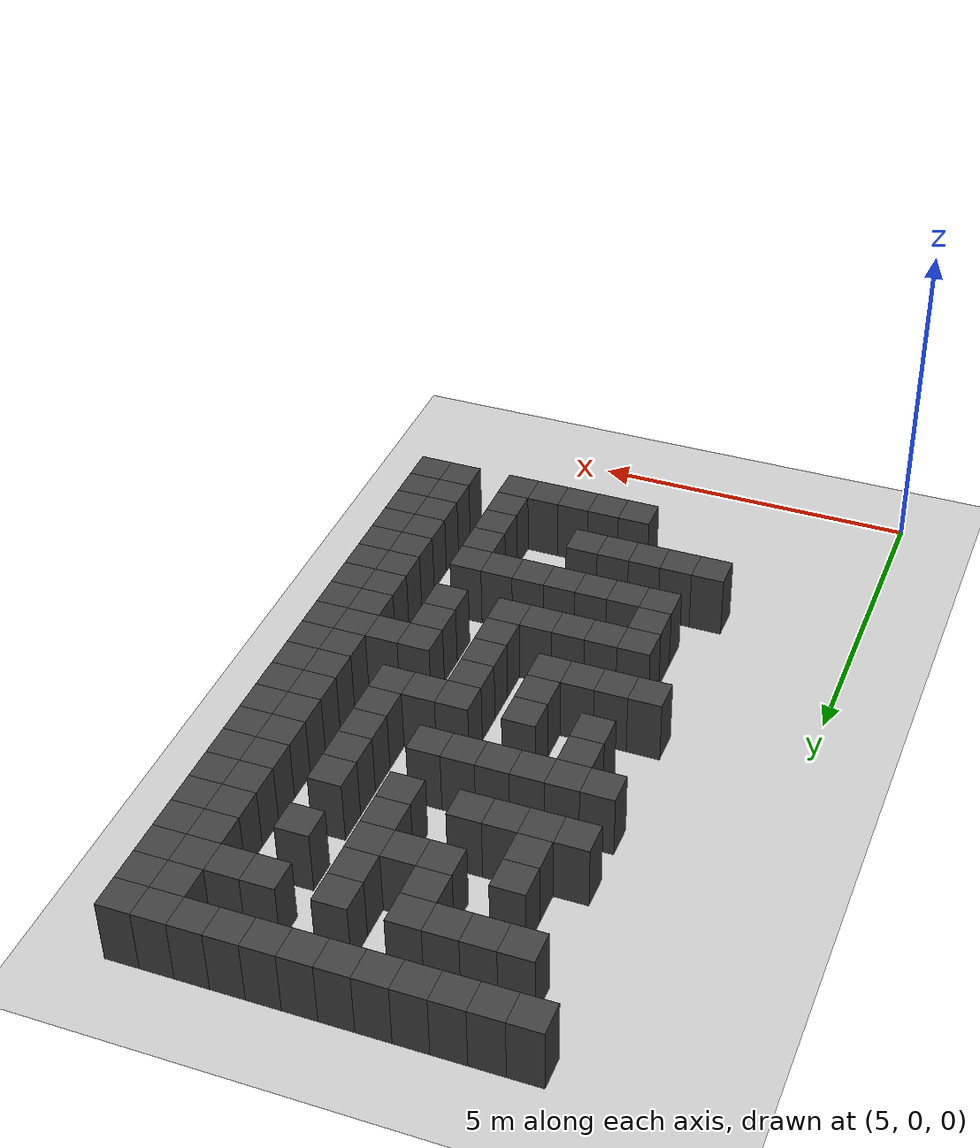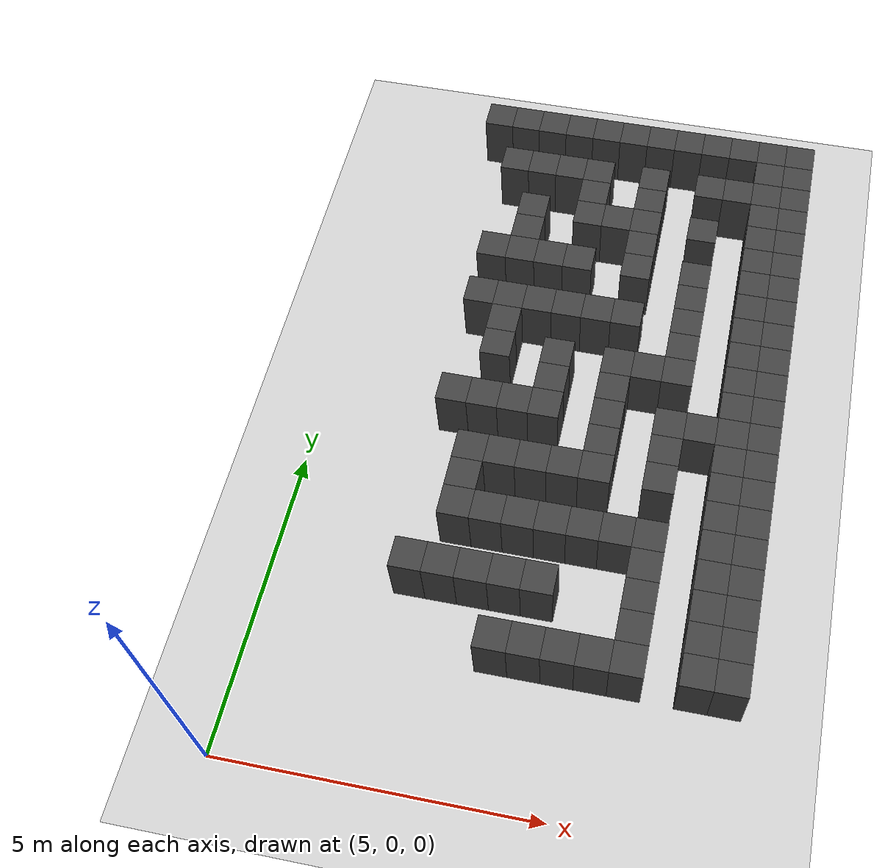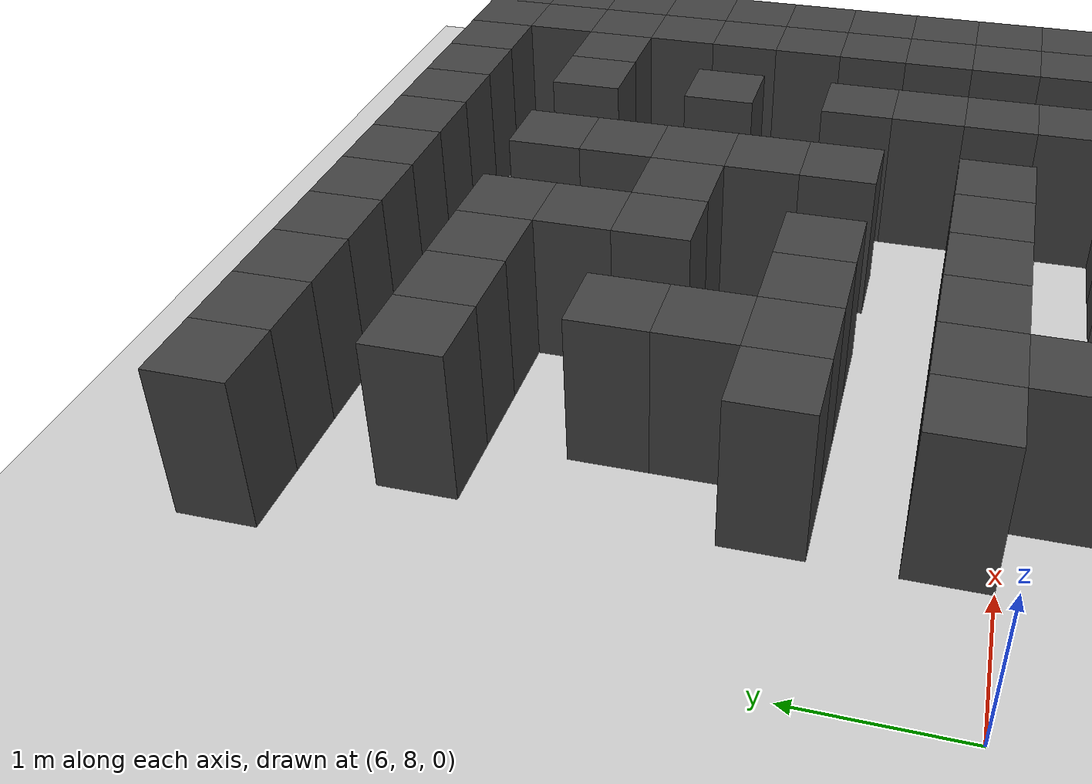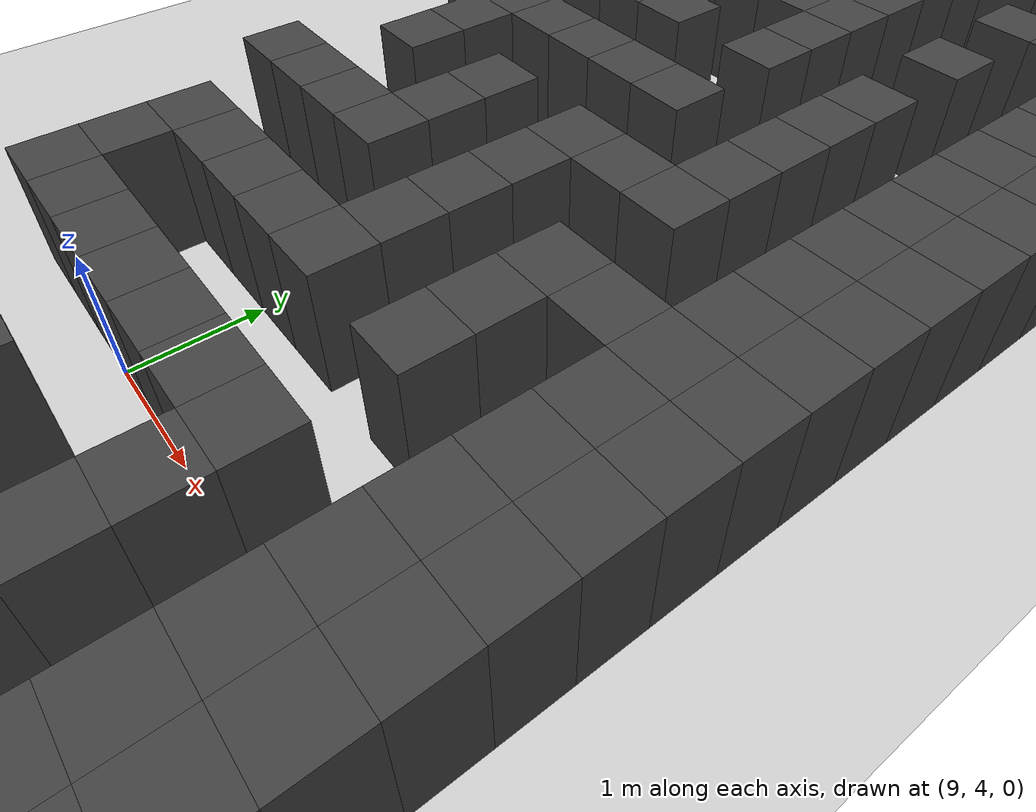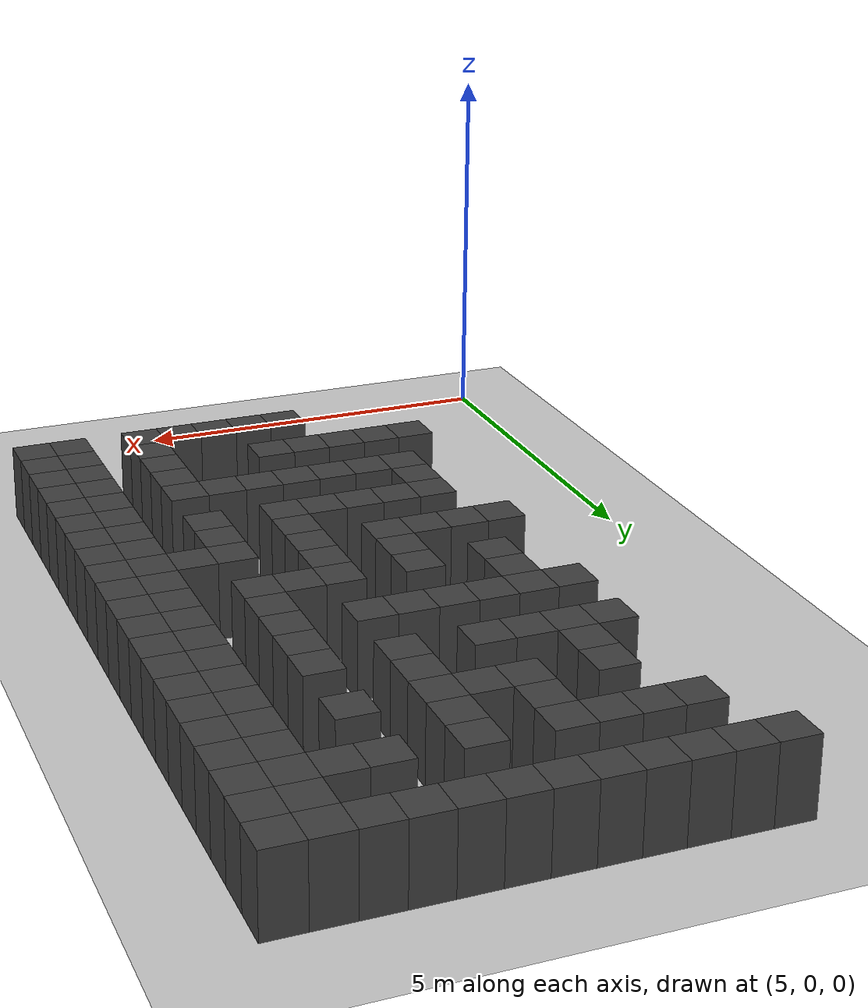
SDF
<sdf version="1.7">
 <world name="map_17503">
  <model name="ground_plane">
   <static>true</static>
   <link name="link">
    <collision name="collision">
     <geometry><plane><normal>0 0 1</normal><size>200 200</size></plane></geometry>
    </collision>
    <visual name="visual">
     <geometry><plane><normal>0 0 1</normal><size>200 200</size></plane></geometry>
     <material><ambient>0.8 0.8 0.8 1</ambient><diffuse>0.8 0.8 0.8 1</diffuse></material>
    </visual>
   </link>
  </model>
  <model name="maze_environment">
   <static>true</static>
   <link name="wall_38">
    <pose>6.750 12.250 0.500 0 0 0</pose>
    <collision name="col"><geometry><box><size>0.5 0.5 1.0</size></box></geometry></collision>
    <visual name="vis">
     <geometry><box><size>0.5 0.5 1.0</size></box></geometry>
     <material><ambient>0.15 0.15 0.15 1</ambient><diffuse>0.25 0.25 0.25 1</diffuse></material>
    </visual>
   </link>
   <link name="wall_39">
    <pose>7.250 12.250 0.500 0 0 0</pose>
    <collision name="col"><geometry><box><size>0.5 0.5 1.0</size></box></geometry></collision>
    <visual name="vis">
     <geometry><box><size>0.5 0.5 1.0</size></box></geometry>
     <material><ambient>0.15 0.15 0.15 1</ambient><diffuse>0.25 0.25 0.25 1</diffuse></material>
    </visual>
   </link>
   <link name="wall_40">
    <pose>7.750 12.250 0.500 0 0 0</pose>
    <collision name="col"><geometry><box><size>0.5 0.5 1.0</size></box></geometry></collision>
    <visual name="vis">
     <geometry><box><size>0.5 0.5 1.0</size></box></geometry>
     <material><ambient>0.15 0.15 0.15 1</ambient><diffuse>0.25 0.25 0.25 1</diffuse></material>
    </visual>
   </link>
   <link name="wall_41">
    <pose>8.250 12.250 0.500 0 0 0</pose>
    <collision name="col"><geometry><box><size>0.5 0.5 1.0</size></box></geometry></collision>
    <visual name="vis">
     <geometry><box><size>0.5 0.5 1.0</size></box></geometry>
     <material><ambient>0.15 0.15 0.15 1</ambient><diffuse>0.25 0.25 0.25 1</diffuse></material>
    </visual>
   </link>
   <link name="wall_42">
    <pose>8.750 12.250 0.500 0 0 0</pose>
    <collision name="col"><geometry><box><size>0.5 0.5 1.0</size></box></geometry></collision>
    <visual name="vis">
     <geometry><box><size>0.5 0.5 1.0</size></box></geometry>
     <material><ambient>0.15 0.15 0.15 1</ambient><diffuse>0.25 0.25 0.25 1</diffuse></material>
    </visual>
   </link>
   <link name="wall_43">
    <pose>9.250 12.250 0.500 0 0 0</pose>
    <collision name="col"><geometry><box><size>0.5 0.5 1.0</size></box></geometry></collision>
    <visual name="vis">
     <geometry><box><size>0.5 0.5 1.0</size></box></geometry>
     <material><ambient>0.15 0.15 0.15 1</ambient><diffuse>0.25 0.25 0.25 1</diffuse></material>
    </visual>
   </link>
   <link name="wall_44">
    <pose>9.750 12.250 0.500 0 0 0</pose>
    <collision name="col"><geometry><box><size>0.5 0.5 1.0</size></box></geometry></collision>
    <visual name="vis">
     <geometry><box><size>0.5 0.5 1.0</size></box></geometry>
     <material><ambient>0.15 0.15 0.15 1</ambient><diffuse>0.25 0.25 0.25 1</diffuse></material>
    </visual>
   </link>
   <link name="wall_45">
    <pose>10.250 12.250 0.500 0 0 0</pose>
    <collision name="col"><geometry><box><size>0.5 0.5 1.0</size></box></geometry></collision>
    <visual name="vis">
     <geometry><box><size>0.5 0.5 1.0</size></box></geometry>
     <material><ambient>0.15 0.15 0.15 1</ambient><diffuse>0.25 0.25 0.25 1</diffuse></material>
    </visual>
   </link>
   <link name="wall_46">
    <pose>10.750 12.250 0.500 0 0 0</pose>
    <collision name="col"><geometry><box><size>0.5 0.5 1.0</size></box></geometry></collision>
    <visual name="vis">
     <geometry><box><size>0.5 0.5 1.0</size></box></geometry>
     <material><ambient>0.15 0.15 0.15 1</ambient><diffuse>0.25 0.25 0.25 1</diffuse></material>
    </visual>
   </link>
   <link name="wall_47">
    <pose>11.250 12.250 0.500 0 0 0</pose>
    <collision name="col"><geometry><box><size>0.5 0.5 1.0</size></box></geometry></collision>
    <visual name="vis">
     <geometry><box><size>0.5 0.5 1.0</size></box></geometry>
     <material><ambient>0.15 0.15 0.15 1</ambient><diffuse>0.25 0.25 0.25 1</diffuse></material>
    </visual>
   </link>
   <link name="wall_48">
    <pose>11.750 12.250 0.500 0 0 0</pose>
    <collision name="col"><geometry><box><size>0.5 0.5 1.0</size></box></geometry></collision>
    <visual name="vis">
     <geometry><box><size>0.5 0.5 1.0</size></box></geometry>
     <material><ambient>0.15 0.15 0.15 1</ambient><diffuse>0.25 0.25 0.25 1</diffuse></material>
    </visual>
   </link>
   <link name="wall_49">
    <pose>12.250 12.250 0.500 0 0 0</pose>
    <collision name="col"><geometry><box><size>0.5 0.5 1.0</size></box></geometry></collision>
    <visual name="vis">
     <geometry><box><size>0.5 0.5 1.0</size></box></geometry>
     <material><ambient>0.15 0.15 0.15 1</ambient><diffuse>0.25 0.25 0.25 1</diffuse></material>
    </visual>
   </link>
   <link name="wall_56">
    <pose>11.750 11.750 0.500 0 0 0</pose>
    <collision name="col"><geometry><box><size>0.5 0.5 1.0</size></box></geometry></collision>
    <visual name="vis">
     <geometry><box><size>0.5 0.5 1.0</size></box></geometry>
     <material><ambient>0.15 0.15 0.15 1</ambient><diffuse>0.25 0.25 0.25 1</diffuse></material>
    </visual>
   </link>
   <link name="wall_57">
    <pose>12.250 11.750 0.500 0 0 0</pose>
    <collision name="col"><geometry><box><size>0.5 0.5 1.0</size></box></geometry></collision>
    <visual name="vis">
     <geometry><box><size>0.5 0.5 1.0</size></box></geometry>
     <material><ambient>0.15 0.15 0.15 1</ambient><diffuse>0.25 0.25 0.25 1</diffuse></material>
    </visual>
   </link>
   <link name="wall_85">
    <pose>7.250 11.250 0.500 0 0 0</pose>
    <collision name="col"><geometry><box><size>0.5 0.5 1.0</size></box></geometry></collision>
    <visual name="vis">
     <geometry><box><size>0.5 0.5 1.0</size></box></geometry>
     <material><ambient>0.15 0.15 0.15 1</ambient><diffuse>0.25 0.25 0.25 1</diffuse></material>
    </visual>
   </link>
   <link name="wall_86">
    <pose>7.750 11.250 0.500 0 0 0</pose>
    <collision name="col"><geometry><box><size>0.5 0.5 1.0</size></box></geometry></collision>
    <visual name="vis">
     <geometry><box><size>0.5 0.5 1.0</size></box></geometry>
     <material><ambient>0.15 0.15 0.15 1</ambient><diffuse>0.25 0.25 0.25 1</diffuse></material>
    </visual>
   </link>
   <link name="wall_87">
    <pose>8.250 11.250 0.500 0 0 0</pose>
    <collision name="col"><geometry><box><size>0.5 0.5 1.0</size></box></geometry></collision>
    <visual name="vis">
     <geometry><box><size>0.5 0.5 1.0</size></box></geometry>
     <material><ambient>0.15 0.15 0.15 1</ambient><diffuse>0.25 0.25 0.25 1</diffuse></material>
    </visual>
   </link>
   <link name="wall_88">
    <pose>8.750 11.250 0.500 0 0 0</pose>
    <collision name="col"><geometry><box><size>0.5 0.5 1.0</size></box></geometry></collision>
    <visual name="vis">
     <geometry><box><size>0.5 0.5 1.0</size></box></geometry>
     <material><ambient>0.15 0.15 0.15 1</ambient><diffuse>0.25 0.25 0.25 1</diffuse></material>
    </visual>
   </link>
   <link name="wall_89">
    <pose>9.750 11.250 0.500 0 0 0</pose>
    <collision name="col"><geometry><box><size>0.5 0.5 1.0</size></box></geometry></collision>
    <visual name="vis">
     <geometry><box><size>0.5 0.5 1.0</size></box></geometry>
     <material><ambient>0.15 0.15 0.15 1</ambient><diffuse>0.25 0.25 0.25 1</diffuse></material>
    </visual>
   </link>
   <link name="wall_90">
    <pose>10.750 11.250 0.500 0 0 0</pose>
    <collision name="col"><geometry><box><size>0.5 0.5 1.0</size></box></geometry></collision>
    <visual name="vis">
     <geometry><box><size>0.5 0.5 1.0</size></box></geometry>
     <material><ambient>0.15 0.15 0.15 1</ambient><diffuse>0.25 0.25 0.25 1</diffuse></material>
    </visual>
   </link>
   <link name="wall_91">
    <pose>11.250 11.250 0.500 0 0 0</pose>
    <collision name="col"><geometry><box><size>0.5 0.5 1.0</size></box></geometry></collision>
    <visual name="vis">
     <geometry><box><size>0.5 0.5 1.0</size></box></geometry>
     <material><ambient>0.15 0.15 0.15 1</ambient><diffuse>0.25 0.25 0.25 1</diffuse></material>
    </visual>
   </link>
   <link name="wall_92">
    <pose>11.750 11.250 0.500 0 0 0</pose>
    <collision name="col"><geometry><box><size>0.5 0.5 1.0</size></box></geometry></collision>
    <visual name="vis">
     <geometry><box><size>0.5 0.5 1.0</size></box></geometry>
     <material><ambient>0.15 0.15 0.15 1</ambient><diffuse>0.25 0.25 0.25 1</diffuse></material>
    </visual>
   </link>
   <link name="wall_93">
    <pose>12.250 11.250 0.500 0 0 0</pose>
    <collision name="col"><geometry><box><size>0.5 0.5 1.0</size></box></geometry></collision>
    <visual name="vis">
     <geometry><box><size>0.5 0.5 1.0</size></box></geometry>
     <material><ambient>0.15 0.15 0.15 1</ambient><diffuse>0.25 0.25 0.25 1</diffuse></material>
    </visual>
   </link>
   <link name="wall_102">
    <pose>8.750 10.750 0.500 0 0 0</pose>
    <collision name="col"><geometry><box><size>0.5 0.5 1.0</size></box></geometry></collision>
    <visual name="vis">
     <geometry><box><size>0.5 0.5 1.0</size></box></geometry>
     <material><ambient>0.15 0.15 0.15 1</ambient><diffuse>0.25 0.25 0.25 1</diffuse></material>
    </visual>
   </link>
   <link name="wall_103">
    <pose>9.750 10.750 0.500 0 0 0</pose>
    <collision name="col"><geometry><box><size>0.5 0.5 1.0</size></box></geometry></collision>
    <visual name="vis">
     <geometry><box><size>0.5 0.5 1.0</size></box></geometry>
     <material><ambient>0.15 0.15 0.15 1</ambient><diffuse>0.25 0.25 0.25 1</diffuse></material>
    </visual>
   </link>
   <link name="wall_104">
    <pose>11.750 10.750 0.500 0 0 0</pose>
    <collision name="col"><geometry><box><size>0.5 0.5 1.0</size></box></geometry></collision>
    <visual name="vis">
     <geometry><box><size>0.5 0.5 1.0</size></box></geometry>
     <material><ambient>0.15 0.15 0.15 1</ambient><diffuse>0.25 0.25 0.25 1</diffuse></material>
    </visual>
   </link>
   <link name="wall_105">
    <pose>12.250 10.750 0.500 0 0 0</pose>
    <collision name="col"><geometry><box><size>0.5 0.5 1.0</size></box></geometry></collision>
    <visual name="vis">
     <geometry><box><size>0.5 0.5 1.0</size></box></geometry>
     <material><ambient>0.15 0.15 0.15 1</ambient><diffuse>0.25 0.25 0.25 1</diffuse></material>
    </visual>
   </link>
   <link name="wall_136">
    <pose>7.750 10.250 0.500 0 0 0</pose>
    <collision name="col"><geometry><box><size>0.5 0.5 1.0</size></box></geometry></collision>
    <visual name="vis">
     <geometry><box><size>0.5 0.5 1.0</size></box></geometry>
     <material><ambient>0.15 0.15 0.15 1</ambient><diffuse>0.25 0.25 0.25 1</diffuse></material>
    </visual>
   </link>
   <link name="wall_137">
    <pose>8.750 10.250 0.500 0 0 0</pose>
    <collision name="col"><geometry><box><size>0.5 0.5 1.0</size></box></geometry></collision>
    <visual name="vis">
     <geometry><box><size>0.5 0.5 1.0</size></box></geometry>
     <material><ambient>0.15 0.15 0.15 1</ambient><diffuse>0.25 0.25 0.25 1</diffuse></material>
    </visual>
   </link>
   <link name="wall_138">
    <pose>9.250 10.250 0.500 0 0 0</pose>
    <collision name="col"><geometry><box><size>0.5 0.5 1.0</size></box></geometry></collision>
    <visual name="vis">
     <geometry><box><size>0.5 0.5 1.0</size></box></geometry>
     <material><ambient>0.15 0.15 0.15 1</ambient><diffuse>0.25 0.25 0.25 1</diffuse></material>
    </visual>
   </link>
   <link name="wall_139">
    <pose>9.750 10.250 0.500 0 0 0</pose>
    <collision name="col"><geometry><box><size>0.5 0.5 1.0</size></box></geometry></collision>
    <visual name="vis">
     <geometry><box><size>0.5 0.5 1.0</size></box></geometry>
     <material><ambient>0.15 0.15 0.15 1</ambient><diffuse>0.25 0.25 0.25 1</diffuse></material>
    </visual>
   </link>
   <link name="wall_140">
    <pose>10.750 10.250 0.500 0 0 0</pose>
    <collision name="col"><geometry><box><size>0.5 0.5 1.0</size></box></geometry></collision>
    <visual name="vis">
     <geometry><box><size>0.5 0.5 1.0</size></box></geometry>
     <material><ambient>0.15 0.15 0.15 1</ambient><diffuse>0.25 0.25 0.25 1</diffuse></material>
    </visual>
   </link>
   <link name="wall_141">
    <pose>11.750 10.250 0.500 0 0 0</pose>
    <collision name="col"><geometry><box><size>0.5 0.5 1.0</size></box></geometry></collision>
    <visual name="vis">
     <geometry><box><size>0.5 0.5 1.0</size></box></geometry>
     <material><ambient>0.15 0.15 0.15 1</ambient><diffuse>0.25 0.25 0.25 1</diffuse></material>
    </visual>
   </link>
   <link name="wall_142">
    <pose>12.250 10.250 0.500 0 0 0</pose>
    <collision name="col"><geometry><box><size>0.5 0.5 1.0</size></box></geometry></collision>
    <visual name="vis">
     <geometry><box><size>0.5 0.5 1.0</size></box></geometry>
     <material><ambient>0.15 0.15 0.15 1</ambient><diffuse>0.25 0.25 0.25 1</diffuse></material>
    </visual>
   </link>
   <link name="wall_150">
    <pose>7.750 9.750 0.500 0 0 0</pose>
    <collision name="col"><geometry><box><size>0.5 0.5 1.0</size></box></geometry></collision>
    <visual name="vis">
     <geometry><box><size>0.5 0.5 1.0</size></box></geometry>
     <material><ambient>0.15 0.15 0.15 1</ambient><diffuse>0.25 0.25 0.25 1</diffuse></material>
    </visual>
   </link>
   <link name="wall_151">
    <pose>9.750 9.750 0.500 0 0 0</pose>
    <collision name="col"><geometry><box><size>0.5 0.5 1.0</size></box></geometry></collision>
    <visual name="vis">
     <geometry><box><size>0.5 0.5 1.0</size></box></geometry>
     <material><ambient>0.15 0.15 0.15 1</ambient><diffuse>0.25 0.25 0.25 1</diffuse></material>
    </visual>
   </link>
   <link name="wall_152">
    <pose>11.750 9.750 0.500 0 0 0</pose>
    <collision name="col"><geometry><box><size>0.5 0.5 1.0</size></box></geometry></collision>
    <visual name="vis">
     <geometry><box><size>0.5 0.5 1.0</size></box></geometry>
     <material><ambient>0.15 0.15 0.15 1</ambient><diffuse>0.25 0.25 0.25 1</diffuse></material>
    </visual>
   </link>
   <link name="wall_153">
    <pose>12.250 9.750 0.500 0 0 0</pose>
    <collision name="col"><geometry><box><size>0.5 0.5 1.0</size></box></geometry></collision>
    <visual name="vis">
     <geometry><box><size>0.5 0.5 1.0</size></box></geometry>
     <material><ambient>0.15 0.15 0.15 1</ambient><diffuse>0.25 0.25 0.25 1</diffuse></material>
    </visual>
   </link>
   <link name="wall_181">
    <pose>7.250 9.250 0.500 0 0 0</pose>
    <collision name="col"><geometry><box><size>0.5 0.5 1.0</size></box></geometry></collision>
    <visual name="vis">
     <geometry><box><size>0.5 0.5 1.0</size></box></geometry>
     <material><ambient>0.15 0.15 0.15 1</ambient><diffuse>0.25 0.25 0.25 1</diffuse></material>
    </visual>
   </link>
   <link name="wall_182">
    <pose>7.750 9.250 0.500 0 0 0</pose>
    <collision name="col"><geometry><box><size>0.5 0.5 1.0</size></box></geometry></collision>
    <visual name="vis">
     <geometry><box><size>0.5 0.5 1.0</size></box></geometry>
     <material><ambient>0.15 0.15 0.15 1</ambient><diffuse>0.25 0.25 0.25 1</diffuse></material>
    </visual>
   </link>
   <link name="wall_183">
    <pose>8.250 9.250 0.500 0 0 0</pose>
    <collision name="col"><geometry><box><size>0.5 0.5 1.0</size></box></geometry></collision>
    <visual name="vis">
     <geometry><box><size>0.5 0.5 1.0</size></box></geometry>
     <material><ambient>0.15 0.15 0.15 1</ambient><diffuse>0.25 0.25 0.25 1</diffuse></material>
    </visual>
   </link>
   <link name="wall_184">
    <pose>8.750 9.250 0.500 0 0 0</pose>
    <collision name="col"><geometry><box><size>0.5 0.5 1.0</size></box></geometry></collision>
    <visual name="vis">
     <geometry><box><size>0.5 0.5 1.0</size></box></geometry>
     <material><ambient>0.15 0.15 0.15 1</ambient><diffuse>0.25 0.25 0.25 1</diffuse></material>
    </visual>
   </link>
   <link name="wall_185">
    <pose>9.750 9.250 0.500 0 0 0</pose>
    <collision name="col"><geometry><box><size>0.5 0.5 1.0</size></box></geometry></collision>
    <visual name="vis">
     <geometry><box><size>0.5 0.5 1.0</size></box></geometry>
     <material><ambient>0.15 0.15 0.15 1</ambient><diffuse>0.25 0.25 0.25 1</diffuse></material>
    </visual>
   </link>
   <link name="wall_186">
    <pose>10.750 9.250 0.500 0 0 0</pose>
    <collision name="col"><geometry><box><size>0.5 0.5 1.0</size></box></geometry></collision>
    <visual name="vis">
     <geometry><box><size>0.5 0.5 1.0</size></box></geometry>
     <material><ambient>0.15 0.15 0.15 1</ambient><diffuse>0.25 0.25 0.25 1</diffuse></material>
    </visual>
   </link>
   <link name="wall_187">
    <pose>11.750 9.250 0.500 0 0 0</pose>
    <collision name="col"><geometry><box><size>0.5 0.5 1.0</size></box></geometry></collision>
    <visual name="vis">
     <geometry><box><size>0.5 0.5 1.0</size></box></geometry>
     <material><ambient>0.15 0.15 0.15 1</ambient><diffuse>0.25 0.25 0.25 1</diffuse></material>
    </visual>
   </link>
   <link name="wall_188">
    <pose>12.250 9.250 0.500 0 0 0</pose>
    <collision name="col"><geometry><box><size>0.5 0.5 1.0</size></box></geometry></collision>
    <visual name="vis">
     <geometry><box><size>0.5 0.5 1.0</size></box></geometry>
     <material><ambient>0.15 0.15 0.15 1</ambient><diffuse>0.25 0.25 0.25 1</diffuse></material>
    </visual>
   </link>
   <link name="wall_198">
    <pose>10.750 8.750 0.500 0 0 0</pose>
    <collision name="col"><geometry><box><size>0.5 0.5 1.0</size></box></geometry></collision>
    <visual name="vis">
     <geometry><box><size>0.5 0.5 1.0</size></box></geometry>
     <material><ambient>0.15 0.15 0.15 1</ambient><diffuse>0.25 0.25 0.25 1</diffuse></material>
    </visual>
   </link>
   <link name="wall_199">
    <pose>11.750 8.750 0.500 0 0 0</pose>
    <collision name="col"><geometry><box><size>0.5 0.5 1.0</size></box></geometry></collision>
    <visual name="vis">
     <geometry><box><size>0.5 0.5 1.0</size></box></geometry>
     <material><ambient>0.15 0.15 0.15 1</ambient><diffuse>0.25 0.25 0.25 1</diffuse></material>
    </visual>
   </link>
   <link name="wall_200">
    <pose>12.250 8.750 0.500 0 0 0</pose>
    <collision name="col"><geometry><box><size>0.5 0.5 1.0</size></box></geometry></collision>
    <visual name="vis">
     <geometry><box><size>0.5 0.5 1.0</size></box></geometry>
     <material><ambient>0.15 0.15 0.15 1</ambient><diffuse>0.25 0.25 0.25 1</diffuse></material>
    </visual>
   </link>
   <link name="wall_229">
    <pose>7.250 8.250 0.500 0 0 0</pose>
    <collision name="col"><geometry><box><size>0.5 0.5 1.0</size></box></geometry></collision>
    <visual name="vis">
     <geometry><box><size>0.5 0.5 1.0</size></box></geometry>
     <material><ambient>0.15 0.15 0.15 1</ambient><diffuse>0.25 0.25 0.25 1</diffuse></material>
    </visual>
   </link>
   <link name="wall_230">
    <pose>7.750 8.250 0.500 0 0 0</pose>
    <collision name="col"><geometry><box><size>0.5 0.5 1.0</size></box></geometry></collision>
    <visual name="vis">
     <geometry><box><size>0.5 0.5 1.0</size></box></geometry>
     <material><ambient>0.15 0.15 0.15 1</ambient><diffuse>0.25 0.25 0.25 1</diffuse></material>
    </visual>
   </link>
   <link name="wall_231">
    <pose>8.250 8.250 0.500 0 0 0</pose>
    <collision name="col"><geometry><box><size>0.5 0.5 1.0</size></box></geometry></collision>
    <visual name="vis">
     <geometry><box><size>0.5 0.5 1.0</size></box></geometry>
     <material><ambient>0.15 0.15 0.15 1</ambient><diffuse>0.25 0.25 0.25 1</diffuse></material>
    </visual>
   </link>
   <link name="wall_232">
    <pose>8.750 8.250 0.500 0 0 0</pose>
    <collision name="col"><geometry><box><size>0.5 0.5 1.0</size></box></geometry></collision>
    <visual name="vis">
     <geometry><box><size>0.5 0.5 1.0</size></box></geometry>
     <material><ambient>0.15 0.15 0.15 1</ambient><diffuse>0.25 0.25 0.25 1</diffuse></material>
    </visual>
   </link>
   <link name="wall_233">
    <pose>9.250 8.250 0.500 0 0 0</pose>
    <collision name="col"><geometry><box><size>0.5 0.5 1.0</size></box></geometry></collision>
    <visual name="vis">
     <geometry><box><size>0.5 0.5 1.0</size></box></geometry>
     <material><ambient>0.15 0.15 0.15 1</ambient><diffuse>0.25 0.25 0.25 1</diffuse></material>
    </visual>
   </link>
   <link name="wall_234">
    <pose>9.750 8.250 0.500 0 0 0</pose>
    <collision name="col"><geometry><box><size>0.5 0.5 1.0</size></box></geometry></collision>
    <visual name="vis">
     <geometry><box><size>0.5 0.5 1.0</size></box></geometry>
     <material><ambient>0.15 0.15 0.15 1</ambient><diffuse>0.25 0.25 0.25 1</diffuse></material>
    </visual>
   </link>
   <link name="wall_235">
    <pose>10.750 8.250 0.500 0 0 0</pose>
    <collision name="col"><geometry><box><size>0.5 0.5 1.0</size></box></geometry></collision>
    <visual name="vis">
     <geometry><box><size>0.5 0.5 1.0</size></box></geometry>
     <material><ambient>0.15 0.15 0.15 1</ambient><diffuse>0.25 0.25 0.25 1</diffuse></material>
    </visual>
   </link>
   <link name="wall_236">
    <pose>11.750 8.250 0.500 0 0 0</pose>
    <collision name="col"><geometry><box><size>0.5 0.5 1.0</size></box></geometry></collision>
    <visual name="vis">
     <geometry><box><size>0.5 0.5 1.0</size></box></geometry>
     <material><ambient>0.15 0.15 0.15 1</ambient><diffuse>0.25 0.25 0.25 1</diffuse></material>
    </visual>
   </link>
   <link name="wall_237">
    <pose>12.250 8.250 0.500 0 0 0</pose>
    <collision name="col"><geometry><box><size>0.5 0.5 1.0</size></box></geometry></collision>
    <visual name="vis">
     <geometry><box><size>0.5 0.5 1.0</size></box></geometry>
     <material><ambient>0.15 0.15 0.15 1</ambient><diffuse>0.25 0.25 0.25 1</diffuse></material>
    </visual>
   </link>
   <link name="wall_247">
    <pose>7.750 7.750 0.500 0 0 0</pose>
    <collision name="col"><geometry><box><size>0.5 0.5 1.0</size></box></geometry></collision>
    <visual name="vis">
     <geometry><box><size>0.5 0.5 1.0</size></box></geometry>
     <material><ambient>0.15 0.15 0.15 1</ambient><diffuse>0.25 0.25 0.25 1</diffuse></material>
    </visual>
   </link>
   <link name="wall_248">
    <pose>10.750 7.750 0.500 0 0 0</pose>
    <collision name="col"><geometry><box><size>0.5 0.5 1.0</size></box></geometry></collision>
    <visual name="vis">
     <geometry><box><size>0.5 0.5 1.0</size></box></geometry>
     <material><ambient>0.15 0.15 0.15 1</ambient><diffuse>0.25 0.25 0.25 1</diffuse></material>
    </visual>
   </link>
   <link name="wall_249">
    <pose>11.750 7.750 0.500 0 0 0</pose>
    <collision name="col"><geometry><box><size>0.5 0.5 1.0</size></box></geometry></collision>
    <visual name="vis">
     <geometry><box><size>0.5 0.5 1.0</size></box></geometry>
     <material><ambient>0.15 0.15 0.15 1</ambient><diffuse>0.25 0.25 0.25 1</diffuse></material>
    </visual>
   </link>
   <link name="wall_250">
    <pose>12.250 7.750 0.500 0 0 0</pose>
    <collision name="col"><geometry><box><size>0.5 0.5 1.0</size></box></geometry></collision>
    <visual name="vis">
     <geometry><box><size>0.5 0.5 1.0</size></box></geometry>
     <material><ambient>0.15 0.15 0.15 1</ambient><diffuse>0.25 0.25 0.25 1</diffuse></material>
    </visual>
   </link>
   <link name="wall_278">
    <pose>7.750 7.250 0.500 0 0 0</pose>
    <collision name="col"><geometry><box><size>0.5 0.5 1.0</size></box></geometry></collision>
    <visual name="vis">
     <geometry><box><size>0.5 0.5 1.0</size></box></geometry>
     <material><ambient>0.15 0.15 0.15 1</ambient><diffuse>0.25 0.25 0.25 1</diffuse></material>
    </visual>
   </link>
   <link name="wall_279">
    <pose>8.750 7.250 0.500 0 0 0</pose>
    <collision name="col"><geometry><box><size>0.5 0.5 1.0</size></box></geometry></collision>
    <visual name="vis">
     <geometry><box><size>0.5 0.5 1.0</size></box></geometry>
     <material><ambient>0.15 0.15 0.15 1</ambient><diffuse>0.25 0.25 0.25 1</diffuse></material>
    </visual>
   </link>
   <link name="wall_280">
    <pose>9.750 7.250 0.500 0 0 0</pose>
    <collision name="col"><geometry><box><size>0.5 0.5 1.0</size></box></geometry></collision>
    <visual name="vis">
     <geometry><box><size>0.5 0.5 1.0</size></box></geometry>
     <material><ambient>0.15 0.15 0.15 1</ambient><diffuse>0.25 0.25 0.25 1</diffuse></material>
    </visual>
   </link>
   <link name="wall_281">
    <pose>10.250 7.250 0.500 0 0 0</pose>
    <collision name="col"><geometry><box><size>0.5 0.5 1.0</size></box></geometry></collision>
    <visual name="vis">
     <geometry><box><size>0.5 0.5 1.0</size></box></geometry>
     <material><ambient>0.15 0.15 0.15 1</ambient><diffuse>0.25 0.25 0.25 1</diffuse></material>
    </visual>
   </link>
   <link name="wall_282">
    <pose>10.750 7.250 0.500 0 0 0</pose>
    <collision name="col"><geometry><box><size>0.5 0.5 1.0</size></box></geometry></collision>
    <visual name="vis">
     <geometry><box><size>0.5 0.5 1.0</size></box></geometry>
     <material><ambient>0.15 0.15 0.15 1</ambient><diffuse>0.25 0.25 0.25 1</diffuse></material>
    </visual>
   </link>
   <link name="wall_283">
    <pose>11.750 7.250 0.500 0 0 0</pose>
    <collision name="col"><geometry><box><size>0.5 0.5 1.0</size></box></geometry></collision>
    <visual name="vis">
     <geometry><box><size>0.5 0.5 1.0</size></box></geometry>
     <material><ambient>0.15 0.15 0.15 1</ambient><diffuse>0.25 0.25 0.25 1</diffuse></material>
    </visual>
   </link>
   <link name="wall_284">
    <pose>12.250 7.250 0.500 0 0 0</pose>
    <collision name="col"><geometry><box><size>0.5 0.5 1.0</size></box></geometry></collision>
    <visual name="vis">
     <geometry><box><size>0.5 0.5 1.0</size></box></geometry>
     <material><ambient>0.15 0.15 0.15 1</ambient><diffuse>0.25 0.25 0.25 1</diffuse></material>
    </visual>
   </link>
   <link name="wall_294">
    <pose>8.750 6.750 0.500 0 0 0</pose>
    <collision name="col"><geometry><box><size>0.5 0.5 1.0</size></box></geometry></collision>
    <visual name="vis">
     <geometry><box><size>0.5 0.5 1.0</size></box></geometry>
     <material><ambient>0.15 0.15 0.15 1</ambient><diffuse>0.25 0.25 0.25 1</diffuse></material>
    </visual>
   </link>
   <link name="wall_295">
    <pose>9.750 6.750 0.500 0 0 0</pose>
    <collision name="col"><geometry><box><size>0.5 0.5 1.0</size></box></geometry></collision>
    <visual name="vis">
     <geometry><box><size>0.5 0.5 1.0</size></box></geometry>
     <material><ambient>0.15 0.15 0.15 1</ambient><diffuse>0.25 0.25 0.25 1</diffuse></material>
    </visual>
   </link>
   <link name="wall_296">
    <pose>11.750 6.750 0.500 0 0 0</pose>
    <collision name="col"><geometry><box><size>0.5 0.5 1.0</size></box></geometry></collision>
    <visual name="vis">
     <geometry><box><size>0.5 0.5 1.0</size></box></geometry>
     <material><ambient>0.15 0.15 0.15 1</ambient><diffuse>0.25 0.25 0.25 1</diffuse></material>
    </visual>
   </link>
   <link name="wall_297">
    <pose>12.250 6.750 0.500 0 0 0</pose>
    <collision name="col"><geometry><box><size>0.5 0.5 1.0</size></box></geometry></collision>
    <visual name="vis">
     <geometry><box><size>0.5 0.5 1.0</size></box></geometry>
     <material><ambient>0.15 0.15 0.15 1</ambient><diffuse>0.25 0.25 0.25 1</diffuse></material>
    </visual>
   </link>
   <link name="wall_324">
    <pose>7.250 6.250 0.500 0 0 0</pose>
    <collision name="col"><geometry><box><size>0.5 0.5 1.0</size></box></geometry></collision>
    <visual name="vis">
     <geometry><box><size>0.5 0.5 1.0</size></box></geometry>
     <material><ambient>0.15 0.15 0.15 1</ambient><diffuse>0.25 0.25 0.25 1</diffuse></material>
    </visual>
   </link>
   <link name="wall_325">
    <pose>7.750 6.250 0.500 0 0 0</pose>
    <collision name="col"><geometry><box><size>0.5 0.5 1.0</size></box></geometry></collision>
    <visual name="vis">
     <geometry><box><size>0.5 0.5 1.0</size></box></geometry>
     <material><ambient>0.15 0.15 0.15 1</ambient><diffuse>0.25 0.25 0.25 1</diffuse></material>
    </visual>
   </link>
   <link name="wall_326">
    <pose>8.250 6.250 0.500 0 0 0</pose>
    <collision name="col"><geometry><box><size>0.5 0.5 1.0</size></box></geometry></collision>
    <visual name="vis">
     <geometry><box><size>0.5 0.5 1.0</size></box></geometry>
     <material><ambient>0.15 0.15 0.15 1</ambient><diffuse>0.25 0.25 0.25 1</diffuse></material>
    </visual>
   </link>
   <link name="wall_327">
    <pose>8.750 6.250 0.500 0 0 0</pose>
    <collision name="col"><geometry><box><size>0.5 0.5 1.0</size></box></geometry></collision>
    <visual name="vis">
     <geometry><box><size>0.5 0.5 1.0</size></box></geometry>
     <material><ambient>0.15 0.15 0.15 1</ambient><diffuse>0.25 0.25 0.25 1</diffuse></material>
    </visual>
   </link>
   <link name="wall_328">
    <pose>9.750 6.250 0.500 0 0 0</pose>
    <collision name="col"><geometry><box><size>0.5 0.5 1.0</size></box></geometry></collision>
    <visual name="vis">
     <geometry><box><size>0.5 0.5 1.0</size></box></geometry>
     <material><ambient>0.15 0.15 0.15 1</ambient><diffuse>0.25 0.25 0.25 1</diffuse></material>
    </visual>
   </link>
   <link name="wall_329">
    <pose>10.750 6.250 0.500 0 0 0</pose>
    <collision name="col"><geometry><box><size>0.5 0.5 1.0</size></box></geometry></collision>
    <visual name="vis">
     <geometry><box><size>0.5 0.5 1.0</size></box></geometry>
     <material><ambient>0.15 0.15 0.15 1</ambient><diffuse>0.25 0.25 0.25 1</diffuse></material>
    </visual>
   </link>
   <link name="wall_330">
    <pose>11.250 6.250 0.500 0 0 0</pose>
    <collision name="col"><geometry><box><size>0.5 0.5 1.0</size></box></geometry></collision>
    <visual name="vis">
     <geometry><box><size>0.5 0.5 1.0</size></box></geometry>
     <material><ambient>0.15 0.15 0.15 1</ambient><diffuse>0.25 0.25 0.25 1</diffuse></material>
    </visual>
   </link>
   <link name="wall_331">
    <pose>11.750 6.250 0.500 0 0 0</pose>
    <collision name="col"><geometry><box><size>0.5 0.5 1.0</size></box></geometry></collision>
    <visual name="vis">
     <geometry><box><size>0.5 0.5 1.0</size></box></geometry>
     <material><ambient>0.15 0.15 0.15 1</ambient><diffuse>0.25 0.25 0.25 1</diffuse></material>
    </visual>
   </link>
   <link name="wall_332">
    <pose>12.250 6.250 0.500 0 0 0</pose>
    <collision name="col"><geometry><box><size>0.5 0.5 1.0</size></box></geometry></collision>
    <visual name="vis">
     <geometry><box><size>0.5 0.5 1.0</size></box></geometry>
     <material><ambient>0.15 0.15 0.15 1</ambient><diffuse>0.25 0.25 0.25 1</diffuse></material>
    </visual>
   </link>
   <link name="wall_343">
    <pose>9.750 5.750 0.500 0 0 0</pose>
    <collision name="col"><geometry><box><size>0.5 0.5 1.0</size></box></geometry></collision>
    <visual name="vis">
     <geometry><box><size>0.5 0.5 1.0</size></box></geometry>
     <material><ambient>0.15 0.15 0.15 1</ambient><diffuse>0.25 0.25 0.25 1</diffuse></material>
    </visual>
   </link>
   <link name="wall_344">
    <pose>10.750 5.750 0.500 0 0 0</pose>
    <collision name="col"><geometry><box><size>0.5 0.5 1.0</size></box></geometry></collision>
    <visual name="vis">
     <geometry><box><size>0.5 0.5 1.0</size></box></geometry>
     <material><ambient>0.15 0.15 0.15 1</ambient><diffuse>0.25 0.25 0.25 1</diffuse></material>
    </visual>
   </link>
   <link name="wall_345">
    <pose>11.750 5.750 0.500 0 0 0</pose>
    <collision name="col"><geometry><box><size>0.5 0.5 1.0</size></box></geometry></collision>
    <visual name="vis">
     <geometry><box><size>0.5 0.5 1.0</size></box></geometry>
     <material><ambient>0.15 0.15 0.15 1</ambient><diffuse>0.25 0.25 0.25 1</diffuse></material>
    </visual>
   </link>
   <link name="wall_346">
    <pose>12.250 5.750 0.500 0 0 0</pose>
    <collision name="col"><geometry><box><size>0.5 0.5 1.0</size></box></geometry></collision>
    <visual name="vis">
     <geometry><box><size>0.5 0.5 1.0</size></box></geometry>
     <material><ambient>0.15 0.15 0.15 1</ambient><diffuse>0.25 0.25 0.25 1</diffuse></material>
    </visual>
   </link>
   <link name="wall_371">
    <pose>7.750 5.250 0.500 0 0 0</pose>
    <collision name="col"><geometry><box><size>0.5 0.5 1.0</size></box></geometry></collision>
    <visual name="vis">
     <geometry><box><size>0.5 0.5 1.0</size></box></geometry>
     <material><ambient>0.15 0.15 0.15 1</ambient><diffuse>0.25 0.25 0.25 1</diffuse></material>
    </visual>
   </link>
   <link name="wall_372">
    <pose>8.250 5.250 0.500 0 0 0</pose>
    <collision name="col"><geometry><box><size>0.5 0.5 1.0</size></box></geometry></collision>
    <visual name="vis">
     <geometry><box><size>0.5 0.5 1.0</size></box></geometry>
     <material><ambient>0.15 0.15 0.15 1</ambient><diffuse>0.25 0.25 0.25 1</diffuse></material>
    </visual>
   </link>
   <link name="wall_373">
    <pose>8.750 5.250 0.500 0 0 0</pose>
    <collision name="col"><geometry><box><size>0.5 0.5 1.0</size></box></geometry></collision>
    <visual name="vis">
     <geometry><box><size>0.5 0.5 1.0</size></box></geometry>
     <material><ambient>0.15 0.15 0.15 1</ambient><diffuse>0.25 0.25 0.25 1</diffuse></material>
    </visual>
   </link>
   <link name="wall_374">
    <pose>9.250 5.250 0.500 0 0 0</pose>
    <collision name="col"><geometry><box><size>0.5 0.5 1.0</size></box></geometry></collision>
    <visual name="vis">
     <geometry><box><size>0.5 0.5 1.0</size></box></geometry>
     <material><ambient>0.15 0.15 0.15 1</ambient><diffuse>0.25 0.25 0.25 1</diffuse></material>
    </visual>
   </link>
   <link name="wall_375">
    <pose>9.750 5.250 0.500 0 0 0</pose>
    <collision name="col"><geometry><box><size>0.5 0.5 1.0</size></box></geometry></collision>
    <visual name="vis">
     <geometry><box><size>0.5 0.5 1.0</size></box></geometry>
     <material><ambient>0.15 0.15 0.15 1</ambient><diffuse>0.25 0.25 0.25 1</diffuse></material>
    </visual>
   </link>
   <link name="wall_376">
    <pose>10.750 5.250 0.500 0 0 0</pose>
    <collision name="col"><geometry><box><size>0.5 0.5 1.0</size></box></geometry></collision>
    <visual name="vis">
     <geometry><box><size>0.5 0.5 1.0</size></box></geometry>
     <material><ambient>0.15 0.15 0.15 1</ambient><diffuse>0.25 0.25 0.25 1</diffuse></material>
    </visual>
   </link>
   <link name="wall_377">
    <pose>11.750 5.250 0.500 0 0 0</pose>
    <collision name="col"><geometry><box><size>0.5 0.5 1.0</size></box></geometry></collision>
    <visual name="vis">
     <geometry><box><size>0.5 0.5 1.0</size></box></geometry>
     <material><ambient>0.15 0.15 0.15 1</ambient><diffuse>0.25 0.25 0.25 1</diffuse></material>
    </visual>
   </link>
   <link name="wall_378">
    <pose>12.250 5.250 0.500 0 0 0</pose>
    <collision name="col"><geometry><box><size>0.5 0.5 1.0</size></box></geometry></collision>
    <visual name="vis">
     <geometry><box><size>0.5 0.5 1.0</size></box></geometry>
     <material><ambient>0.15 0.15 0.15 1</ambient><diffuse>0.25 0.25 0.25 1</diffuse></material>
    </visual>
   </link>
   <link name="wall_392">
    <pose>7.750 4.750 0.500 0 0 0</pose>
    <collision name="col"><geometry><box><size>0.5 0.5 1.0</size></box></geometry></collision>
    <visual name="vis">
     <geometry><box><size>0.5 0.5 1.0</size></box></geometry>
     <material><ambient>0.15 0.15 0.15 1</ambient><diffuse>0.25 0.25 0.25 1</diffuse></material>
    </visual>
   </link>
   <link name="wall_393">
    <pose>11.750 4.750 0.500 0 0 0</pose>
    <collision name="col"><geometry><box><size>0.5 0.5 1.0</size></box></geometry></collision>
    <visual name="vis">
     <geometry><box><size>0.5 0.5 1.0</size></box></geometry>
     <material><ambient>0.15 0.15 0.15 1</ambient><diffuse>0.25 0.25 0.25 1</diffuse></material>
    </visual>
   </link>
   <link name="wall_394">
    <pose>12.250 4.750 0.500 0 0 0</pose>
    <collision name="col"><geometry><box><size>0.5 0.5 1.0</size></box></geometry></collision>
    <visual name="vis">
     <geometry><box><size>0.5 0.5 1.0</size></box></geometry>
     <material><ambient>0.15 0.15 0.15 1</ambient><diffuse>0.25 0.25 0.25 1</diffuse></material>
    </visual>
   </link>
   <link name="wall_421">
    <pose>7.750 4.250 0.500 0 0 0</pose>
    <collision name="col"><geometry><box><size>0.5 0.5 1.0</size></box></geometry></collision>
    <visual name="vis">
     <geometry><box><size>0.5 0.5 1.0</size></box></geometry>
     <material><ambient>0.15 0.15 0.15 1</ambient><diffuse>0.25 0.25 0.25 1</diffuse></material>
    </visual>
   </link>
   <link name="wall_422">
    <pose>8.250 4.250 0.500 0 0 0</pose>
    <collision name="col"><geometry><box><size>0.5 0.5 1.0</size></box></geometry></collision>
    <visual name="vis">
     <geometry><box><size>0.5 0.5 1.0</size></box></geometry>
     <material><ambient>0.15 0.15 0.15 1</ambient><diffuse>0.25 0.25 0.25 1</diffuse></material>
    </visual>
   </link>
   <link name="wall_423">
    <pose>8.750 4.250 0.500 0 0 0</pose>
    <collision name="col"><geometry><box><size>0.5 0.5 1.0</size></box></geometry></collision>
    <visual name="vis">
     <geometry><box><size>0.5 0.5 1.0</size></box></geometry>
     <material><ambient>0.15 0.15 0.15 1</ambient><diffuse>0.25 0.25 0.25 1</diffuse></material>
    </visual>
   </link>
   <link name="wall_424">
    <pose>9.250 4.250 0.500 0 0 0</pose>
    <collision name="col"><geometry><box><size>0.5 0.5 1.0</size></box></geometry></collision>
    <visual name="vis">
     <geometry><box><size>0.5 0.5 1.0</size></box></geometry>
     <material><ambient>0.15 0.15 0.15 1</ambient><diffuse>0.25 0.25 0.25 1</diffuse></material>
    </visual>
   </link>
   <link name="wall_425">
    <pose>9.750 4.250 0.500 0 0 0</pose>
    <collision name="col"><geometry><box><size>0.5 0.5 1.0</size></box></geometry></collision>
    <visual name="vis">
     <geometry><box><size>0.5 0.5 1.0</size></box></geometry>
     <material><ambient>0.15 0.15 0.15 1</ambient><diffuse>0.25 0.25 0.25 1</diffuse></material>
    </visual>
   </link>
   <link name="wall_426">
    <pose>10.250 4.250 0.500 0 0 0</pose>
    <collision name="col"><geometry><box><size>0.5 0.5 1.0</size></box></geometry></collision>
    <visual name="vis">
     <geometry><box><size>0.5 0.5 1.0</size></box></geometry>
     <material><ambient>0.15 0.15 0.15 1</ambient><diffuse>0.25 0.25 0.25 1</diffuse></material>
    </visual>
   </link>
   <link name="wall_427">
    <pose>10.750 4.250 0.500 0 0 0</pose>
    <collision name="col"><geometry><box><size>0.5 0.5 1.0</size></box></geometry></collision>
    <visual name="vis">
     <geometry><box><size>0.5 0.5 1.0</size></box></geometry>
     <material><ambient>0.15 0.15 0.15 1</ambient><diffuse>0.25 0.25 0.25 1</diffuse></material>
    </visual>
   </link>
   <link name="wall_428">
    <pose>11.750 4.250 0.500 0 0 0</pose>
    <collision name="col"><geometry><box><size>0.5 0.5 1.0</size></box></geometry></collision>
    <visual name="vis">
     <geometry><box><size>0.5 0.5 1.0</size></box></geometry>
     <material><ambient>0.15 0.15 0.15 1</ambient><diffuse>0.25 0.25 0.25 1</diffuse></material>
    </visual>
   </link>
   <link name="wall_429">
    <pose>12.250 4.250 0.500 0 0 0</pose>
    <collision name="col"><geometry><box><size>0.5 0.5 1.0</size></box></geometry></collision>
    <visual name="vis">
     <geometry><box><size>0.5 0.5 1.0</size></box></geometry>
     <material><ambient>0.15 0.15 0.15 1</ambient><diffuse>0.25 0.25 0.25 1</diffuse></material>
    </visual>
   </link>
   <link name="wall_441">
    <pose>10.750 3.750 0.500 0 0 0</pose>
    <collision name="col"><geometry><box><size>0.5 0.5 1.0</size></box></geometry></collision>
    <visual name="vis">
     <geometry><box><size>0.5 0.5 1.0</size></box></geometry>
     <material><ambient>0.15 0.15 0.15 1</ambient><diffuse>0.25 0.25 0.25 1</diffuse></material>
    </visual>
   </link>
   <link name="wall_442">
    <pose>11.750 3.750 0.500 0 0 0</pose>
    <collision name="col"><geometry><box><size>0.5 0.5 1.0</size></box></geometry></collision>
    <visual name="vis">
     <geometry><box><size>0.5 0.5 1.0</size></box></geometry>
     <material><ambient>0.15 0.15 0.15 1</ambient><diffuse>0.25 0.25 0.25 1</diffuse></material>
    </visual>
   </link>
   <link name="wall_443">
    <pose>12.250 3.750 0.500 0 0 0</pose>
    <collision name="col"><geometry><box><size>0.5 0.5 1.0</size></box></geometry></collision>
    <visual name="vis">
     <geometry><box><size>0.5 0.5 1.0</size></box></geometry>
     <material><ambient>0.15 0.15 0.15 1</ambient><diffuse>0.25 0.25 0.25 1</diffuse></material>
    </visual>
   </link>
   <link name="wall_473">
    <pose>7.250 3.250 0.500 0 0 0</pose>
    <collision name="col"><geometry><box><size>0.5 0.5 1.0</size></box></geometry></collision>
    <visual name="vis">
     <geometry><box><size>0.5 0.5 1.0</size></box></geometry>
     <material><ambient>0.15 0.15 0.15 1</ambient><diffuse>0.25 0.25 0.25 1</diffuse></material>
    </visual>
   </link>
   <link name="wall_474">
    <pose>7.750 3.250 0.500 0 0 0</pose>
    <collision name="col"><geometry><box><size>0.5 0.5 1.0</size></box></geometry></collision>
    <visual name="vis">
     <geometry><box><size>0.5 0.5 1.0</size></box></geometry>
     <material><ambient>0.15 0.15 0.15 1</ambient><diffuse>0.25 0.25 0.25 1</diffuse></material>
    </visual>
   </link>
   <link name="wall_475">
    <pose>8.250 3.250 0.500 0 0 0</pose>
    <collision name="col"><geometry><box><size>0.5 0.5 1.0</size></box></geometry></collision>
    <visual name="vis">
     <geometry><box><size>0.5 0.5 1.0</size></box></geometry>
     <material><ambient>0.15 0.15 0.15 1</ambient><diffuse>0.25 0.25 0.25 1</diffuse></material>
    </visual>
   </link>
   <link name="wall_476">
    <pose>8.750 3.250 0.500 0 0 0</pose>
    <collision name="col"><geometry><box><size>0.5 0.5 1.0</size></box></geometry></collision>
    <visual name="vis">
     <geometry><box><size>0.5 0.5 1.0</size></box></geometry>
     <material><ambient>0.15 0.15 0.15 1</ambient><diffuse>0.25 0.25 0.25 1</diffuse></material>
    </visual>
   </link>
   <link name="wall_477">
    <pose>9.250 3.250 0.500 0 0 0</pose>
    <collision name="col"><geometry><box><size>0.5 0.5 1.0</size></box></geometry></collision>
    <visual name="vis">
     <geometry><box><size>0.5 0.5 1.0</size></box></geometry>
     <material><ambient>0.15 0.15 0.15 1</ambient><diffuse>0.25 0.25 0.25 1</diffuse></material>
    </visual>
   </link>
   <link name="wall_478">
    <pose>10.750 3.250 0.500 0 0 0</pose>
    <collision name="col"><geometry><box><size>0.5 0.5 1.0</size></box></geometry></collision>
    <visual name="vis">
     <geometry><box><size>0.5 0.5 1.0</size></box></geometry>
     <material><ambient>0.15 0.15 0.15 1</ambient><diffuse>0.25 0.25 0.25 1</diffuse></material>
    </visual>
   </link>
   <link name="wall_479">
    <pose>11.750 3.250 0.500 0 0 0</pose>
    <collision name="col"><geometry><box><size>0.5 0.5 1.0</size></box></geometry></collision>
    <visual name="vis">
     <geometry><box><size>0.5 0.5 1.0</size></box></geometry>
     <material><ambient>0.15 0.15 0.15 1</ambient><diffuse>0.25 0.25 0.25 1</diffuse></material>
    </visual>
   </link>
   <link name="wall_480">
    <pose>12.250 3.250 0.500 0 0 0</pose>
    <collision name="col"><geometry><box><size>0.5 0.5 1.0</size></box></geometry></collision>
    <visual name="vis">
     <geometry><box><size>0.5 0.5 1.0</size></box></geometry>
     <material><ambient>0.15 0.15 0.15 1</ambient><diffuse>0.25 0.25 0.25 1</diffuse></material>
    </visual>
   </link>
   <link name="wall_491">
    <pose>10.750 2.750 0.500 0 0 0</pose>
    <collision name="col"><geometry><box><size>0.5 0.5 1.0</size></box></geometry></collision>
    <visual name="vis">
     <geometry><box><size>0.5 0.5 1.0</size></box></geometry>
     <material><ambient>0.15 0.15 0.15 1</ambient><diffuse>0.25 0.25 0.25 1</diffuse></material>
    </visual>
   </link>
   <link name="wall_492">
    <pose>11.750 2.750 0.500 0 0 0</pose>
    <collision name="col"><geometry><box><size>0.5 0.5 1.0</size></box></geometry></collision>
    <visual name="vis">
     <geometry><box><size>0.5 0.5 1.0</size></box></geometry>
     <material><ambient>0.15 0.15 0.15 1</ambient><diffuse>0.25 0.25 0.25 1</diffuse></material>
    </visual>
   </link>
   <link name="wall_493">
    <pose>12.250 2.750 0.500 0 0 0</pose>
    <collision name="col"><geometry><box><size>0.5 0.5 1.0</size></box></geometry></collision>
    <visual name="vis">
     <geometry><box><size>0.5 0.5 1.0</size></box></geometry>
     <material><ambient>0.15 0.15 0.15 1</ambient><diffuse>0.25 0.25 0.25 1</diffuse></material>
    </visual>
   </link>
   <link name="wall_525">
    <pose>8.750 2.250 0.500 0 0 0</pose>
    <collision name="col"><geometry><box><size>0.5 0.5 1.0</size></box></geometry></collision>
    <visual name="vis">
     <geometry><box><size>0.5 0.5 1.0</size></box></geometry>
     <material><ambient>0.15 0.15 0.15 1</ambient><diffuse>0.25 0.25 0.25 1</diffuse></material>
    </visual>
   </link>
   <link name="wall_526">
    <pose>9.250 2.250 0.500 0 0 0</pose>
    <collision name="col"><geometry><box><size>0.5 0.5 1.0</size></box></geometry></collision>
    <visual name="vis">
     <geometry><box><size>0.5 0.5 1.0</size></box></geometry>
     <material><ambient>0.15 0.15 0.15 1</ambient><diffuse>0.25 0.25 0.25 1</diffuse></material>
    </visual>
   </link>
   <link name="wall_527">
    <pose>9.750 2.250 0.500 0 0 0</pose>
    <collision name="col"><geometry><box><size>0.5 0.5 1.0</size></box></geometry></collision>
    <visual name="vis">
     <geometry><box><size>0.5 0.5 1.0</size></box></geometry>
     <material><ambient>0.15 0.15 0.15 1</ambient><diffuse>0.25 0.25 0.25 1</diffuse></material>
    </visual>
   </link>
   <link name="wall_528">
    <pose>10.250 2.250 0.500 0 0 0</pose>
    <collision name="col"><geometry><box><size>0.5 0.5 1.0</size></box></geometry></collision>
    <visual name="vis">
     <geometry><box><size>0.5 0.5 1.0</size></box></geometry>
     <material><ambient>0.15 0.15 0.15 1</ambient><diffuse>0.25 0.25 0.25 1</diffuse></material>
    </visual>
   </link>
   <link name="wall_529">
    <pose>10.750 2.250 0.500 0 0 0</pose>
    <collision name="col"><geometry><box><size>0.5 0.5 1.0</size></box></geometry></collision>
    <visual name="vis">
     <geometry><box><size>0.5 0.5 1.0</size></box></geometry>
     <material><ambient>0.15 0.15 0.15 1</ambient><diffuse>0.25 0.25 0.25 1</diffuse></material>
    </visual>
   </link>
   <link name="wall_530">
    <pose>11.750 2.250 0.500 0 0 0</pose>
    <collision name="col"><geometry><box><size>0.5 0.5 1.0</size></box></geometry></collision>
    <visual name="vis">
     <geometry><box><size>0.5 0.5 1.0</size></box></geometry>
     <material><ambient>0.15 0.15 0.15 1</ambient><diffuse>0.25 0.25 0.25 1</diffuse></material>
    </visual>
   </link>
   <link name="wall_531">
    <pose>12.250 2.250 0.500 0 0 0</pose>
    <collision name="col"><geometry><box><size>0.5 0.5 1.0</size></box></geometry></collision>
    <visual name="vis">
     <geometry><box><size>0.5 0.5 1.0</size></box></geometry>
     <material><ambient>0.15 0.15 0.15 1</ambient><diffuse>0.25 0.25 0.25 1</diffuse></material>
    </visual>
   </link>
  </model>
 </world>
</sdf>
